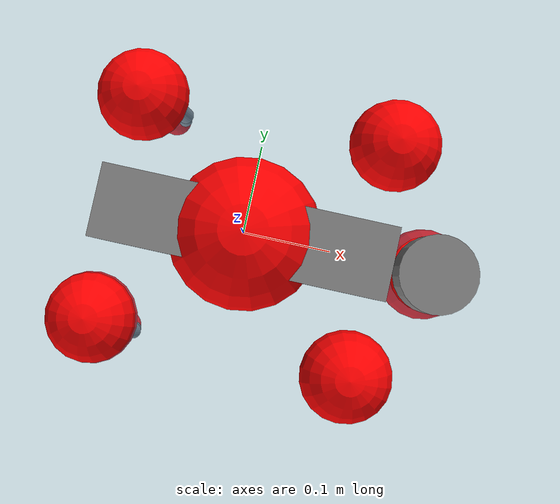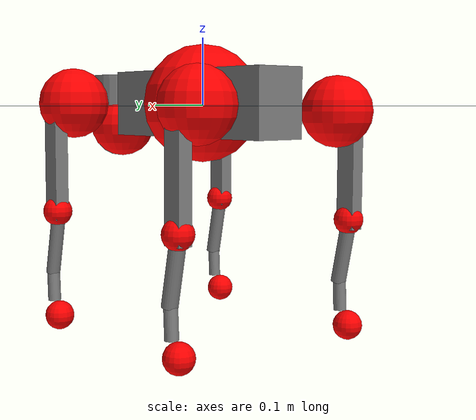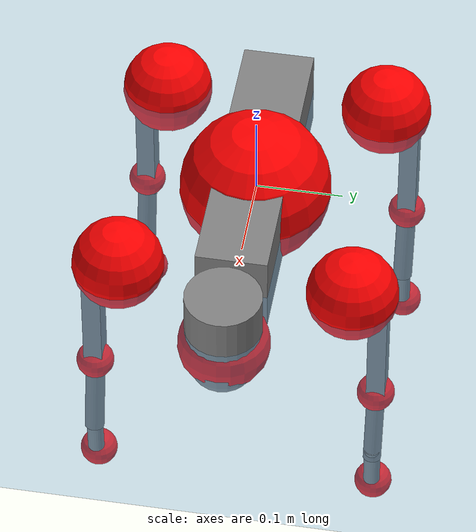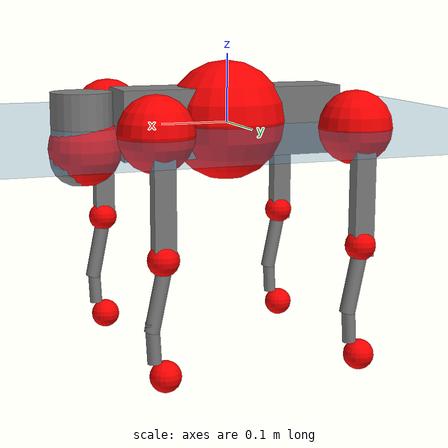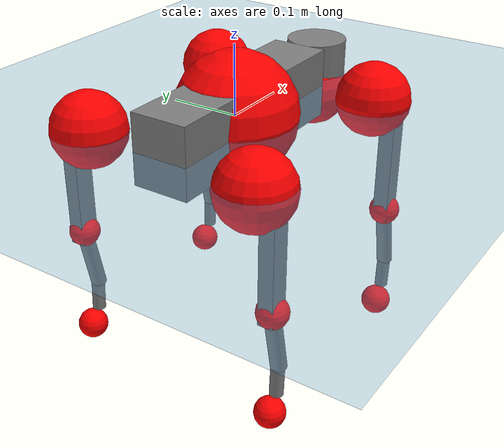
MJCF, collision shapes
<mujoco model="go2">
  <compiler angle="radian" assetdir="assets" balanceinertia="true" inertiafromgeom="false"/>

  <option timestep="0.005" density="1.2" viscosity="2e-05"/>

  <size nkey="1"/>

  <visual>
    <quality shadowsize="8192"/>
    <map shadowclip="0.5"/>
  </visual>

  <default>
    <default class="/">
      <geom contype="0" conaffinity="0" group="1" solref="-1000 -80"/>
      <site size="0.01 0.005 0.005" group="5"/>
      <general forcelimited="true" biastype="affine" gainprm="20" biasprm="0 -20 -0.5"/>
      <default class="go2">
        <joint armature="0.01" damping="0.01" frictionloss="0.2"/>
        <geom condim="1" margin="0.001"/>
        <default class="visual">
          <geom type="mesh" group="2"/>
        </default>
        <default class="collision">
          <geom group="3"/>
          <default class="foot">
            <geom size="0.022 0 0" condim="6" priority="1" friction="0.8 0.02 0.01" solimp="0.015 1 0.022"/>
          </default>
        </default>
        <default class="reward_collision_sphere">
          <geom group="5" rgba="1 0 0 1"/>
        </default>
      </default>
    </default>
  </default>

  <asset>
    <texture type="skybox" colorspace="auto" name="//unnamed_texture_0" builtin="gradient" rgb1="0.95 0.95 0.95" rgb2="0.95 0.95 0.95" width="100" height="600"/>
    <texture type="2d" colorspace="auto" name="texplane" builtin="checker" rgb1="0.345 0.575 0.748" rgb2="0.345 0.575 0.748" markrgb="1 1 1" width="512" height="512"/>
    <material name="MatPlane" class="/" texture="texplane" texuniform="true" texrepeat="2 2" specular="0.9"/>
    <material name="metal" class="/" rgba="0.9 0.95 0.95 1"/>
    <material name="black" class="/" rgba="0 0 0 1"/>
    <material name="white" class="/"/>
    <material name="gray" class="/" rgba="0.671705 0.692426 0.77427 1"/>
    <mesh name="base_0" class="/" file="base_0.obj"/>
    <mesh name="base_1" class="/" file="base_1.obj"/>
    <mesh name="base_2" class="/" file="base_2.obj"/>
    <mesh name="base_3" class="/" file="base_3.obj"/>
    <mesh name="base_4" class="/" file="base_4.obj"/>
    <mesh name="hip_0" class="/" file="hip_0.obj"/>
    <mesh name="hip_1" class="/" file="hip_1.obj"/>
    <mesh name="thigh_0" class="/" file="thigh_0.obj"/>
    <mesh name="thigh_1" class="/" file="thigh_1.obj"/>
    <mesh name="thigh_mirror_0" class="/" file="thigh_mirror_0.obj"/>
    <mesh name="thigh_mirror_1" class="/" file="thigh_mirror_1.obj"/>
    <mesh name="calf_0" class="/" file="calf_0.obj"/>
    <mesh name="calf_1" class="/" file="calf_1.obj"/>
    <mesh name="calf_mirror_0" class="/" file="calf_mirror_0.obj"/>
    <mesh name="calf_mirror_1" class="/" file="calf_mirror_1.obj"/>
    <mesh name="foot" class="/" file="foot.obj"/>
  </asset>

  <worldbody>
    <geom name="floor" class="/" size="100 100 0.125" type="plane" group="0" material="MatPlane"/>
    <light name="toplight_shadow" class="/" pos="0 0 5" dir="0.0990148 0.0990148 -0.990148" type="directional" ambient="0.04 0.04 0.04" diffuse="0.55 0.55 0.55" specular="0.12 0.12 0.12"/>
    <light name="toplight_fill" class="/" pos="0 0 5" dir="0.0990148 0.0990148 -0.990148" type="directional" castshadow="false" ambient="0.04 0.04 0.04" diffuse="0.3 0.3 0.3" specular="0.08 0.08 0.08"/>
    <body name="trunk" childclass="go2" pos="0.00155146 -0.000798595 0.00312074" quat="0.999999 -0.000262976 -0.000174988 -0.0010767">
      <inertial pos="0.0176866 -0.00089309 -0.00403863" quat="0.00361917 0.713663 0.00693388 0.700446" mass="4.48961" diaginertia="0.0252002 0.164671 0.00573246"/>
      <joint name="//unnamed_joint_0" type="free" armature="0" damping="0" frictionloss="0"/>
      <geom name="//unnamed_geom_1" class="visual" material="black" mesh="base_0"/>
      <geom name="//unnamed_geom_2" class="visual" material="black" mesh="base_1"/>
      <geom name="//unnamed_geom_3" class="visual" material="black" mesh="base_2"/>
      <geom name="//unnamed_geom_4" class="visual" material="white" mesh="base_3"/>
      <geom name="//unnamed_geom_5" class="visual" material="gray" mesh="base_4"/>
      <geom name="trunk_1" class="collision" size="0.165574 0.0411514 0.0501739" type="box"/>
      <geom name="trunk_2" class="collision" size="0.0440122 0.039611" pos="0.216232 0 0.00755557" type="cylinder"/>
      <geom name="trunk_3" class="collision" size="0.0413715" pos="0.222301 0 -0.0453334"/>
      <geom name="//unnamed_geom_9" class="reward_collision_sphere" size="0.0880244"/>
      <geom name="//unnamed_geom_10" class="reward_collision_sphere" size="0.0528147" pos="0.212438 0 -0.0340001"/>
      <site name="imu" pos="-0.0080834 0.0071033 0.0334422" size="0.00880244"/>
      <camera name="track" pos="0 -2.25294 0" quat="0.707107 0.707107 0 0" mode="trackcom"/>
      <camera name="ego_camera" pos="0.236717 0 0.0340001" quat="-0.5 -0.5 0.5 0.5"/>
      <body name="FL_hip" pos="0.1463 0.0559005 0.000317275" quat="1 0.000137925 -0.000143467 -0.000352466">
        <inertial pos="-0.00236898 0.00154022 0.00333594" quat="0.486406 0.498697 0.506617 0.507986" mass="0.451494" diaginertia="0.000218477 0.00102561 0.000116008"/>
        <joint name="FL_hip_joint" pos="0 0 0" axis="0.999915 0.0055066 -0.0118028" stiffness="0.00131505" range="-1.03935 1.08354" armature="0.00877877" damping="0.00748212" frictionloss="0.191859"/>
        <geom name="//unnamed_geom_11" class="visual" material="metal" mesh="hip_0"/>
        <geom name="//unnamed_geom_12" class="visual" material="gray" mesh="hip_1"/>
        <geom name="//unnamed_geom_13" class="collision" size="0.0404912 0.0176049" pos="0 0.0901174 0" quat="0.707107 0.707107 0 0" type="cylinder"/>
        <geom name="//unnamed_geom_14" class="reward_collision_sphere" size="0.0528147" pos="0 0.0788528 0"/>
        <body name="FL_thigh" pos="0.000492585 0.110031 -0.00241407" quat="1 0.000547357 8.51687e-05 9.17104e-05">
          <inertial pos="-0.00446294 -0.025561 -0.024663" quat="0.831074 0.0833131 -0.00716463 0.54984" mass="0.823646" diaginertia="0.0015654 0.0107734 0.000221556"/>
          <joint name="FL_thigh_joint" pos="0 0 0" axis="0.000145333 1 -0.000829768" stiffness="0.00412665" range="-1.60155 3.48969" armature="0.00870822" damping="0.00903686" frictionloss="0.175045"/>
          <geom name="//unnamed_geom_15" class="visual" material="metal" mesh="thigh_0"/>
          <geom name="//unnamed_geom_16" class="visual" material="gray" mesh="thigh_1"/>
          <geom name="//unnamed_geom_17" class="collision" size="0.093746 0.010783 0.0149642" pos="0 0 -0.0804668" quat="0.707107 0 0.707107 0" type="box"/>
          <body name="FL_calf" pos="0.000352569 -0.000971392 -0.161675" quat="1 0.000124458 -5.627e-05 -9.33598e-06">
            <inertial pos="0.00890161 0.0018204 -0.105489" quat="0.710671 0.00154146 -0.0045049 0.703509" mass="0.163363" diaginertia="0.000385509 0.00270071 1.32694e-05"/>
            <joint name="FL_calf_joint" pos="0 0 0" axis="0.000787417 1 0.000240725" range="-2.64369 -0.808744" armature="0.00779258" damping="0" frictionloss="0.145552"/>
            <geom name="//unnamed_geom_18" class="visual" material="gray" mesh="calf_0"/>
            <geom name="//unnamed_geom_19" class="visual" material="black" mesh="calf_1"/>
            <geom name="FL_calf0" class="collision" size="0.0105629 0.0528147" pos="0.00606966 0 -0.0453334" quat="0.994493 0 -0.104807 0" type="cylinder"/>
            <geom name="//unnamed_geom_21" class="collision" size="0.00968269 0.0286079" pos="0.0151742 0 -0.111822" quat="0.999688 0 0.0249974 0" type="cylinder"/>
            <geom name="//unnamed_geom_22" class="visual" pos="0 0 -0.160934" quat="1 0 0 0" material="black" mesh="foot"/>
            <geom name="FL_foot" class="foot" size="0.0177216" pos="-0.00151742 0 -0.160934"/>
            <geom name="//unnamed_geom_24" class="reward_collision_sphere" size="0.0220061"/>
            <geom name="//unnamed_geom_25" class="reward_collision_sphere" size="0.0220061" pos="-0.00151742 0 -0.160934"/>
            <site name="FL_foot" class="foot" pos="-0.00151742 0 -0.160934" size="0.00880244"/>
          </body>
        </body>
      </body>
      <body name="FR_hip" pos="0.146023 -0.0540139 0.00181045" quat="0.999998 -0.00166558 2.12047e-05 -0.000478895">
        <inertial pos="-0.00618361 -0.00198325 -0.00180356" quat="0.488568 0.50228 0.498823 0.510089" mass="0.428612" diaginertia="0.000220671 0.00105431 0.000116769"/>
        <joint name="FR_hip_joint" pos="0 0 0" axis="0.99997 -0.0061071 0.0046976" stiffness="0.0104212" range="-0.988775 1.01287" armature="0.00982601" damping="0.00501091" frictionloss="0.184384"/>
        <geom name="//unnamed_geom_26" class="visual" pos="0 3.23122e-09 1.38594e-07" quat="4.63268e-05 1 0 0" material="metal" mesh="hip_0"/>
        <geom name="//unnamed_geom_27" class="visual" pos="0 5.2382e-09 -3.42795e-07" quat="4.63268e-05 1 0 0" material="gray" mesh="hip_1"/>
        <geom name="//unnamed_geom_28" class="collision" size="0.0404912 0.0176049" pos="0 -0.0901174 0" quat="0.707107 0.707107 0 0" type="cylinder"/>
        <geom name="//unnamed_geom_29" class="reward_collision_sphere" size="0.0528147" pos="0 -0.0788528 0"/>
        <body name="FR_thigh" pos="0.00139996 -0.108791 -0.00463048" quat="0.999999 -0.000513089 -0.000843558 0.00050942">
          <inertial pos="-0.00427297 0.0245545 -0.0277352" quat="0.541848 -0.0175948 0.0909056 0.83536" mass="0.781109" diaginertia="0.00148574 0.0106346 0.000221696"/>
          <joint name="FR_thigh_joint" pos="0 0 0" axis="-0.00264581 -0.999995 0.00146732" range="-3.49865 1.53926" armature="0.00770383" damping="0.0299824" frictionloss="0.179553"/>
          <geom name="//unnamed_geom_30" class="visual" material="metal" mesh="thigh_mirror_0"/>
          <geom name="//unnamed_geom_31" class="visual" material="gray" mesh="thigh_mirror_1"/>
          <geom name="//unnamed_geom_32" class="collision" size="0.093746 0.010783 0.0149642" pos="0 0 -0.0804668" quat="0.707107 0 0.707107 0" type="box"/>
          <body name="FR_calf" pos="0.00237672 0.000486426 -0.163813" quat="0.999999 0.000557577 0.000146306 -0.000999709">
            <inertial pos="0.0021255 0.00268677 -0.107628" quat="0.712413 0.00814768 -0.00410427 0.701701" mass="0.164686" diaginertia="0.000382568 0.00267442 1.32462e-05"/>
            <joint name="FR_calf_joint" pos="0 0 0" axis="0.00549366 -0.999976 -0.00410227" range="0.847837 2.70217" armature="0.00921411" damping="0.00860566" frictionloss="0.15834"/>
            <geom name="//unnamed_geom_33" class="visual" material="gray" mesh="calf_mirror_0"/>
            <geom name="//unnamed_geom_34" class="visual" material="black" mesh="calf_mirror_1"/>
            <geom name="FR_calf0" class="collision" size="0.0114432 0.0528147" pos="0.00758708 0 -0.0453334" quat="0.995004 0 -0.0998334 0" type="cylinder"/>
            <geom name="//unnamed_geom_36" class="collision" size="0.00968269 0.0286079" pos="0.0151742 0 -0.111822" quat="0.999688 0 0.0249974 0" type="cylinder"/>
            <geom name="//unnamed_geom_37" class="visual" pos="0 0 -0.160934" quat="1 0 0 0" material="black" mesh="foot"/>
            <geom name="FR_foot" class="foot" size="0.0217461" pos="-0.00151742 0 -0.160934"/>
            <geom name="//unnamed_geom_39" class="reward_collision_sphere" size="0.0220061"/>
            <geom name="//unnamed_geom_40" class="reward_collision_sphere" size="0.0220061" pos="-0.00151742 0 -0.160934"/>
            <site name="FR_foot" class="foot" pos="-0.00151742 0 -0.160934" size="0.00880244"/>
          </body>
        </body>
      </body>
      <body name="RL_hip" pos="-0.147211 0.051629 -0.00217828" quat="0.999999 6.00286e-05 -0.00107993 -0.000605237">
        <inertial pos="0.00156537 0.00396932 0.00308332" quat="0.504028 0.493987 0.492118 0.509659" mass="0.446798" diaginertia="0.000212619 0.00109377 0.0001163"/>
        <joint name="RL_hip_joint" pos="0 0 0" axis="-0.999955 -0.00920767 -0.00225707" stiffness="0.00733362" range="-1.01999 1.00572" armature="0.0083597" damping="0.00895964" frictionloss="0.179198"/>
        <geom name="//unnamed_geom_41" class="visual" pos="-2.74498e-11 0 -5.38077e-09" quat="4.63268e-05 0 1 0" material="metal" mesh="hip_0"/>
        <geom name="//unnamed_geom_42" class="visual" pos="-4.44993e-11 0 -4.77198e-09" quat="4.63268e-05 0 1 0" material="gray" mesh="hip_1"/>
        <geom name="//unnamed_geom_43" class="collision" size="0.0404912 0.0176049" pos="0 0.0901174 0" quat="0.707107 0.707107 0 0" type="cylinder"/>
        <geom name="//unnamed_geom_44" class="reward_collision_sphere" size="0.0528147" pos="0 0.0788528 0"/>
        <body name="RL_thigh" pos="0.00157781 0.108789 -0.00499754" quat="1 -0.000103235 5.01907e-05 4.04055e-05">
          <inertial pos="-0.00659164 -0.0252279 -0.0211372" quat="0.829459 0.0843157 -0.0199198 0.551808" mass="0.74383" diaginertia="0.00137658 0.0102615 0.000206474"/>
          <joint name="RL_thigh_joint" pos="0 0 0" axis="-0.0173027 0.999763 -0.0131849" stiffness="0.00611497" range="-0.541999 4.53792" armature="0.00855355" damping="0.031047" frictionloss="0.195578"/>
          <geom name="//unnamed_geom_45" class="visual" material="metal" mesh="thigh_0"/>
          <geom name="//unnamed_geom_46" class="visual" material="gray" mesh="thigh_1"/>
          <geom name="//unnamed_geom_47" class="collision" size="0.093746 0.010783 0.0149642" pos="0 0 -0.0804668" quat="0.707107 0 0.707107 0" type="box"/>
          <body name="RL_calf" pos="0.000723513 -0.000425203 -0.159238" quat="1 0.000177584 4.64125e-05 -3.72042e-05">
            <inertial pos="0.00759899 -0.000150591 -0.103316" quat="0.712971 -0.00356176 -0.0115247 0.70109" mass="0.163999" diaginertia="0.00037305 0.00258029 1.34028e-05"/>
            <joint name="RL_calf_joint" pos="0 0 0" axis="-0.0016552 0.999912 -0.0131452" range="-2.68583 -0.75453" armature="0.00789519" damping="0.024265" frictionloss="0.178272"/>
            <geom name="//unnamed_geom_48" class="visual" material="gray" mesh="calf_0"/>
            <geom name="//unnamed_geom_49" class="visual" material="black" mesh="calf_1"/>
            <geom name="RL_calf0" class="collision" size="0.0114432 0.0528147" pos="0.00758708 0 -0.0453334" quat="0.995004 0 -0.0998334 0" type="cylinder"/>
            <geom name="//unnamed_geom_51" class="collision" size="0.00968269 0.0286079" pos="0.0151742 0 -0.111822" quat="0.999688 0 0.0249974 0" type="cylinder"/>
            <geom name="//unnamed_geom_52" class="visual" pos="0 0 -0.160934" quat="1 0 0 0" material="black" mesh="foot"/>
            <geom name="RL_foot" class="foot" size="0.0212037" pos="-0.00151742 0 -0.160934"/>
            <geom name="//unnamed_geom_54" class="reward_collision_sphere" size="0.0220061"/>
            <geom name="//unnamed_geom_55" class="reward_collision_sphere" size="0.0220061" pos="-0.00151742 0 -0.160934"/>
            <site name="RL_foot" class="foot" pos="-0.00151742 0 -0.160934" size="0.00880244"/>
          </body>
        </body>
      </body>
      <body name="RR_hip" pos="-0.150555 -0.0513949 -0.0119852" quat="1 -0.000217374 0.000127273 0.000880338">
        <inertial pos="0.00458789 -0.00321993 0.00137173" quat="0.50767 0.493788 0.497462 0.500974" mass="0.467748" diaginertia="0.00020688 0.00103018 0.000116066"/>
        <joint name="RR_hip_joint" pos="0 0 0" axis="-0.999799 0.0139517 0.0144155" range="-1.08912 1.04889" armature="0.00876196" damping="0.000774553" frictionloss="0.141877"/>
        <geom name="//unnamed_geom_56" class="visual" pos="4.01817e-11 3.23122e-09 -1.43975e-07" quat="2.14617e-09 4.63268e-05 4.63268e-05 -1" material="metal" mesh="hip_0"/>
        <geom name="//unnamed_geom_57" class="visual" pos="1.30078e-11 5.2382e-09 3.38023e-07" quat="2.14617e-09 4.63268e-05 4.63268e-05 -1" material="gray" mesh="hip_1"/>
        <geom name="//unnamed_geom_58" class="collision" size="0.0404912 0.0176049" pos="0 -0.0901174 0" quat="0.707107 0.707107 0 0" type="cylinder"/>
        <geom name="//unnamed_geom_59" class="reward_collision_sphere" size="0.0528147" pos="0 -0.0788528 0"/>
        <body name="RR_thigh" pos="-0.00318525 -0.106297 -0.00143895" quat="0.999999 0.000952974 -0.00105891 -0.000487169">
          <inertial pos="-0.00235275 0.0230956 -0.0211443" quat="0.552468 -0.0163534 0.0833116 0.829199" mass="0.794304" diaginertia="0.00142453 0.0103605 0.000215807"/>
          <joint name="RR_thigh_joint" pos="0 0 0" axis="-0.00219137 -0.999885 0.0150234" stiffness="0.00207077" range="-4.54902 0.527291" armature="0.00836904" damping="0" frictionloss="0.153076"/>
          <geom name="//unnamed_geom_60" class="visual" material="metal" mesh="thigh_mirror_0"/>
          <geom name="//unnamed_geom_61" class="visual" material="gray" mesh="thigh_mirror_1"/>
          <geom name="//unnamed_geom_62" class="collision" size="0.093746 0.010783 0.0149642" pos="0 0 -0.0804668" quat="0.707107 0 0.707107 0" type="box"/>
          <body name="RR_calf" pos="0.00161574 -0.000860787 -0.160089" quat="0.999998 -0.00090639 -0.00030419 -0.00183038">
            <inertial pos="0.00709935 0.000469391 -0.106104" quat="0.700239 0.00412017 0.00371546 0.713887" mass="0.162399" diaginertia="0.000370939 0.00275653 1.36708e-05"/>
            <joint name="RR_calf_joint" pos="0 0 0" axis="0.0164457 -0.999858 0.003755" stiffness="0.00898897" range="0.810403 2.67053" armature="0.00841596" damping="0.0198314" frictionloss="0.152657"/>
            <geom name="//unnamed_geom_63" class="visual" material="gray" mesh="calf_mirror_0"/>
            <geom name="//unnamed_geom_64" class="visual" material="black" mesh="calf_mirror_1"/>
            <geom name="RR_calf0" class="collision" size="0.0114432 0.0528147" pos="0.00758708 0 -0.0453334" quat="0.995004 0 -0.0998334 0" type="cylinder"/>
            <geom name="//unnamed_geom_66" class="collision" size="0.00968269 0.0286079" pos="0.0151742 0 -0.111822" quat="0.999688 0 0.0249974 0" type="cylinder"/>
            <geom name="//unnamed_geom_67" class="visual" pos="0 0 -0.160934" quat="1 0 0 0" material="black" mesh="foot"/>
            <geom name="RR_foot" class="foot" size="0.0188895" pos="-0.00151742 0 -0.160934"/>
            <geom name="//unnamed_geom_69" class="reward_collision_sphere" size="0.0220061"/>
            <geom name="//unnamed_geom_70" class="reward_collision_sphere" size="0.0220061" pos="-0.00151742 0 -0.160934"/>
            <site name="RR_foot" class="foot" pos="-0.00151742 0 -0.160934" size="0.00880244"/>
          </body>
        </body>
      </body>
    </body>
  </worldbody>

  <contact>
    <pair class="/" geom1="floor" geom2="FL_foot" name="//unnamed_contact_0"/>
    <pair class="/" geom1="floor" geom2="FR_foot" name="//unnamed_contact_1"/>
    <pair class="/" geom1="floor" geom2="RL_foot" name="//unnamed_contact_2"/>
    <pair class="/" geom1="floor" geom2="RR_foot" name="//unnamed_contact_3"/>
  </contact>

  <actuator>
    <general name="FL_hip" class="/" joint="FL_hip_joint" forcerange="-21.3368 21.3368" gainprm="18.7789" biasprm="0 -18.7789 -0.408835"/>
    <general name="FL_thigh" class="/" joint="FL_thigh_joint" forcerange="-22.5561 22.5561" gainprm="18.7789" biasprm="0 -18.7789 -0.408835"/>
    <general name="FL_calf" class="/" joint="FL_calf_joint" forcerange="-42.3323 42.3323" gainprm="18.7789" biasprm="0 -18.7789 -0.408835"/>
    <general name="FR_hip" class="/" joint="FR_hip_joint" forcerange="-19.1874 19.1874" gainprm="18.7789" biasprm="0 -18.7789 -0.408835"/>
    <general name="FR_thigh" class="/" joint="FR_thigh_joint" forcerange="-22.1477 22.1477" gainprm="18.7789" biasprm="0 -18.7789 -0.408835"/>
    <general name="FR_calf" class="/" joint="FR_calf_joint" forcerange="-41.3917 41.3917" gainprm="18.7789" biasprm="0 -18.7789 -0.408835"/>
    <general name="RL_hip" class="/" joint="RL_hip_joint" forcerange="-21.2942 21.2942" gainprm="18.7789" biasprm="0 -18.7789 -0.408835"/>
    <general name="RL_thigh" class="/" joint="RL_thigh_joint" forcerange="-23.2162 23.2162" gainprm="18.7789" biasprm="0 -18.7789 -0.408835"/>
    <general name="RL_calf" class="/" joint="RL_calf_joint" forcerange="-37.4421 37.4421" gainprm="18.7789" biasprm="0 -18.7789 -0.408835"/>
    <general name="RR_hip" class="/" joint="RR_hip_joint" forcerange="-21.2288 21.2288" gainprm="18.7789" biasprm="0 -18.7789 -0.408835"/>
    <general name="RR_thigh" class="/" joint="RR_thigh_joint" forcerange="-18.8139 18.8139" gainprm="18.7789" biasprm="0 -18.7789 -0.408835"/>
    <general name="RR_calf" class="/" joint="RR_calf_joint" forcerange="-41.956 41.956" gainprm="18.7789" biasprm="0 -18.7789 -0.408835"/>
  </actuator>

  <sensor>
    <gyro site="imu" name="imu_angular_velocity"/>
    <velocimeter site="imu" name="imu_linear_velocity"/>
    <framelinvel objtype="site" objname="FL_foot" name="FL_foot_global_linear_velocity"/>
    <framelinvel objtype="site" objname="FR_foot" name="FR_foot_global_linear_velocity"/>
    <framelinvel objtype="site" objname="RL_foot" name="RL_foot_global_linear_velocity"/>
    <framelinvel objtype="site" objname="RR_foot" name="RR_foot_global_linear_velocity"/>
  </sensor>

  <keyframe>
    <key name="home" qpos="0 0 0.325 1 0 0 0 0.1 0.8 -1.5 -0.1 -0.8 1.5 -0.1 0.8 -1.5 0.1 -0.8 1.5"/>
  </keyframe>
</mujoco>
